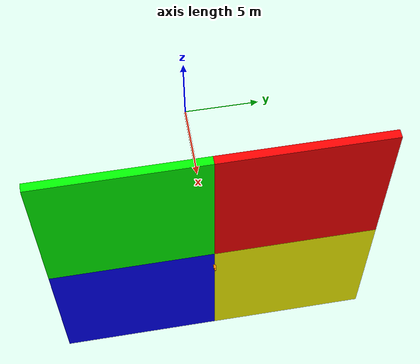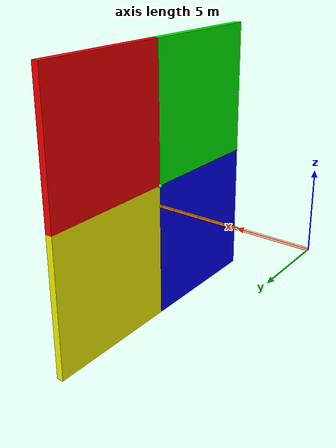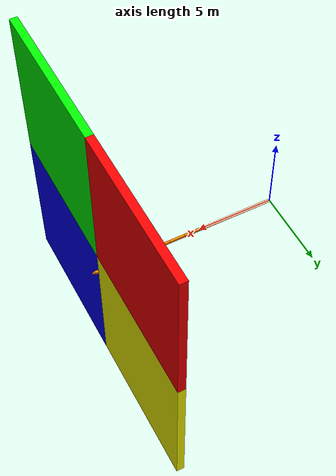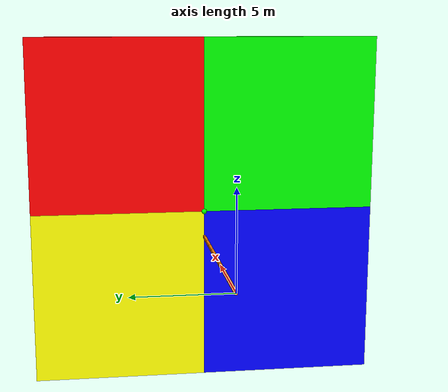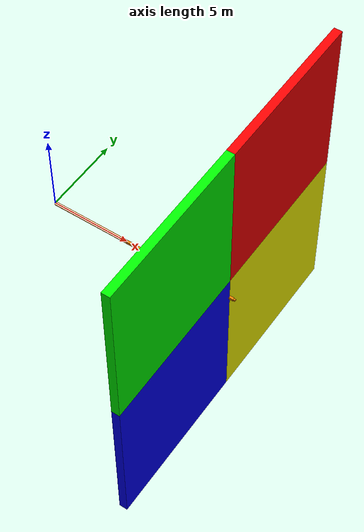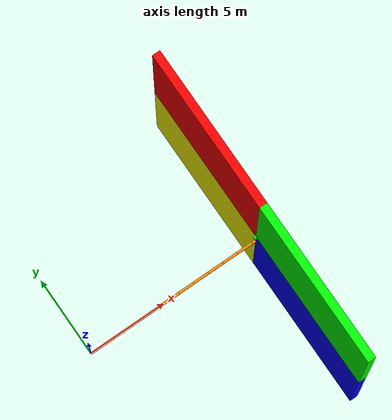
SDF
<?xml version="1.0"?>
<sdf version='1.6'>
  <world name='10DOFSensorPlacementEnvironment'>
    <light name='sun' type='directional'>
      <cast_shadows>1</cast_shadows>
      <pose frame=''>0 0 10 0 -0 0</pose>
      <diffuse>0.8 0.8 0.8 1</diffuse>
      <specular>0.2 0.2 0.2 1</specular>
      <attenuation>
        <range>1000</range>
        <constant>0.9</constant>
        <linear>0.01</linear>
        <quadratic>0.001</quadratic>
      </attenuation>
      <direction>-0.5 0.1 -0.9</direction>
    </light>
    <gravity>0 0 -9.8</gravity>
    <magnetic_field>6e-06 2.3e-05 -4.2e-05</magnetic_field>
    <atmosphere type='adiabatic'/>
    <physics name='default_physics' default='0' type='ode'>
      <max_step_size>0.001</max_step_size>
      <real_time_factor>1</real_time_factor>
      <real_time_update_rate>1000</real_time_update_rate>
    </physics>
    <scene>
      <ambient>0.4 0.4 0.4 1</ambient>
      <background>0.7 0.7 0.7 1</background>
      <shadows>1</shadows>
    </scene>
    <wind/>
    <spherical_coordinates>
      <surface_model>EARTH_WGS84</surface_model>
      <latitude_deg>0</latitude_deg>
      <longitude_deg>0</longitude_deg>
      <elevation>0</elevation>
      <heading_deg>0</heading_deg>
    </spherical_coordinates>

    <model name='GoalArea'>
      <pose frame=''>11.225 0 1.5 0 -0 0</pose>
      <link name='GoalAreaLink'>
        <inertial>
          <mass>1</mass>
          <inertia>
            <ixx>0.166667</ixx>
            <ixy>0</ixy>
            <ixz>0</ixz>
            <iyy>0.166667</iyy>
            <iyz>0</iyz>
            <izz>0.166667</izz>
          </inertia>
          <pose frame=''>0 0 0 0 -0 0</pose>
        </inertial>
        <visual name='visual'>
          <geometry>
            <sphere>
              <radius>0.15</radius>
            </sphere>
          </geometry>
          <material>
            <script>
              <name>Gazebo/Grey</name>
              <uri>file://media/materials/scripts/gazebo.material</uri>
            </script>
            <ambient>0 1 0 1</ambient>
          </material>
        </visual>
        <self_collide>0</self_collide>
        <enable_wind>0</enable_wind>
        <kinematic>0</kinematic>
      </link>
    </model>

    <model name="Wall0">
      <pose frame=''>11.5 0 1.0 0 0 0</pose>
      <link name="link">
        <pose frame=''>0 0 0 0 -0 0</pose>
        <collision name="collision">
          <pose frame=''>0 0 0 0 -0 0</pose>
          <geometry>
            <box>
              <size>0.5 10 10</size>
            </box>
          </geometry>
        </collision>
      </link>
    </model>

    <model name="Wall1">
      <pose frame=''>11.5 5 6.5 0 0 0</pose>
      <link name="link">
        <pose frame=''>0 0 0 0 -0 0</pose>
        <visual name="visual">
          <pose frame=''>0 0 0 0 -0 0</pose>
          <geometry>
            <box>
              <size>0.5 10 10</size>
            </box>
          </geometry>
          <material>
            <script>
              <name>Gazebo/Grey</name>
              <uri>file://media/materials/scripts/gazebo.material</uri>
            </script>
            <ambient>1 0 0 1</ambient>
          </material>
        </visual>
      </link>
    </model>

    <model name="Wall2">
      <pose frame=''>11.5 -5 6.5 0 0 0</pose>
      <link name="link">
        <pose frame=''>0 0 0 0 -0 0</pose>
        <visual name="visual">
          <pose frame=''>0 0 0 0 -0 0</pose>
          <geometry>
            <box>
              <size>0.5 10 10</size>
            </box>
          </geometry>
          <material>
            <script>
              <name>Gazebo/Grey</name>
              <uri>file://media/materials/scripts/gazebo.material</uri>
            </script>
            <ambient>0 1 0 1</ambient>
          </material>
        </visual>
      </link>
    </model>

    <model name="Wall3">
      <pose frame=''>11.5 -5 -3.5 0 0 0</pose>
      <link name="link">
        <pose frame=''>0 0 0 0 -0 0</pose>
        <visual name="visual">
          <pose frame=''>0 0 0 0 -0 0</pose>
          <geometry>
            <box>
              <size>0.5 10 10</size>
            </box>
          </geometry>
          <material>
            <script>
              <name>Gazebo/Grey</name>
              <uri>file://media/materials/scripts/gazebo.material</uri>
            </script>
            <ambient>0 0 1 1</ambient>
          </material>
        </visual>
      </link>
    </model>

    <model name="Wall4">
      <pose frame=''>11.5 5 -3.5 0 0 0</pose>
      <link name="link">
        <pose frame=''>0 0 0 0 -0 0</pose>
        <visual name="visual">
          <pose frame=''>0 0 0 0 -0 0</pose>
          <geometry>
            <box>
              <size>0.5 10 10</size>
            </box>
          </geometry>
          <material>
            <script>
              <name>Gazebo/Grey</name>
              <uri>file://media/materials/scripts/gazebo.material</uri>
            </script>
            <ambient>1 1 0 1</ambient>
          </material>
        </visual>
      </link>
    </model>

    <include>
        <uri>model://12DOFManipulator</uri>
        <pose>0.0 0.0 0.0 0 0 0</pose>
    </include>

    <gui fullscreen='0'>
      <camera name='user_camera'>
        <pose frame=''>-1.47298 -0.355116 9.73836 -0 1.2618 -0.035805</pose>
        <view_controller>orbit</view_controller>
        <projection_type>perspective</projection_type>
      </camera>
    </gui>
  </world>
</sdf>

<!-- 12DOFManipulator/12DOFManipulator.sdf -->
<sdf version='1.6'>
  <model name='12DOFManipulator'>
    <link name="link1">
      <pose frame=''>0 0 0 0 0 0</pose>
      <inertial>
        <pose frame='link1'>0.5 0 0 0 0 0</pose>
        <mass>1.0</mass>
        <inertia>
          <ixx>0.005</ixx>
          <ixy>0.</ixy>
          <ixz>0.0</ixz>
          <iyy>0.006</iyy>
          <izz>0.003</izz>
        </inertia>
      </inertial>
      <visual name='visual'>
        <pose frame=''>0.5 0 0 0 0 0</pose>
        <geometry>
          <box>
            <size>1 0.15 0.15</size>
          </box>
        </geometry>
        <material>
          <ambient>1.0 0.5019607843137254902 0 1.0</ambient>
        </material>
      </visual>
      <self_collide>0</self_collide>
    </link>

    <link name="link2">
      <pose frame=''>1 0 0 0 0 0</pose>
      <inertial>
        <pose frame='link2'>0.5 0 0 0 0 0</pose>
        <mass>1.0</mass>
        <inertia>
          <ixx>0.005</ixx>
          <ixy>0.</ixy>
          <ixz>0.0</ixz>
          <iyy>0.006</iyy>
          <izz>0.003</izz>
        </inertia>
      </inertial>
      <visual name='visual'>
        <pose frame=''>0.5 0 0 0 0 0</pose>
        <geometry>
          <box>
            <size>1 0.15 0.15</size>
          </box>
        </geometry>
        <material>
          <ambient>1.0 0.5019607843137254902 0 1.0</ambient>
        </material>
      </visual>
      <self_collide>0</self_collide>
    </link>

    <link name="link3">
      <pose frame=''>2 0 0 0 0 0</pose>
      <inertial>
        <pose frame='link3'>0.5 0 0 0 0 0</pose>
        <mass>1.0</mass>
        <inertia>
          <ixx>0.005</ixx>
          <ixy>0.</ixy>
          <ixz>0.0</ixz>
          <iyy>0.006</iyy>
          <izz>0.003</izz>
        </inertia>
      </inertial>
      <visual name='visual'>
        <pose frame=''>0.5 0 0 0 0 0</pose>
        <geometry>
          <box>
            <size>1 0.15 0.15</size>
          </box>
        </geometry>
        <material>
          <ambient>1.0 0.5019607843137254902 0 1.0</ambient>
        </material>
      </visual>
      <self_collide>0</self_collide>
    </link>

    <link name="link4">
      <pose frame=''>3 0 0 0 0 0</pose>
      <inertial>
        <pose frame='link4'>0.5 0 0 0 0 0</pose>
        <mass>1.0</mass>
        <inertia>
          <ixx>0.005</ixx>
          <ixy>0.</ixy>
          <ixz>0.0</ixz>
          <iyy>0.006</iyy>
          <izz>0.003</izz>
        </inertia>
      </inertial>
      <visual name='visual'>
        <pose frame=''>0.5 0 0 0 0 0</pose>
        <geometry>
          <box>
            <size>1 0.15 0.15</size>
          </box>
        </geometry>
        <material>
          <ambient>1.0 0.5019607843137254902 0 1.0</ambient>
        </material>
      </visual>
      <self_collide>0</self_collide>
    </link>

    <link name="link5">
      <pose frame=''>4 0 0 0 0 0</pose>
      <inertial>
        <pose frame='link5'>0.5 0 0 0 0 0</pose>
        <mass>1.0</mass>
        <inertia>
          <ixx>0.005</ixx>
          <ixy>0.</ixy>
          <ixz>0.0</ixz>
          <iyy>0.006</iyy>
          <izz>0.003</izz>
        </inertia>
      </inertial>
      <collision name='collision'>
        <pose frame=''>0.5 0 0 0 0 0</pose>
        <geometry>
          <box>
            <size>1 0.15 0.15</size>
          </box>
        </geometry>
      </collision>
      <visual name='visual'>
        <pose frame=''>0.5 0 0 0 0 0</pose>
        <geometry>
          <box>
            <size>1 0.15 0.15</size>
          </box>
        </geometry>
        <material>
          <ambient>1.0 0.5019607843137254902 0 1.0</ambient>
        </material>
      </visual>
      <self_collide>0</self_collide>
    </link>

    <link name="link6">
      <pose frame=''>5 0 0 0 0 0</pose>
      <inertial>
        <pose frame='link6'>0.5 0 0 0 0 0</pose>
        <mass>1.0</mass>
        <inertia>
          <ixx>0.005</ixx>
          <ixy>0.</ixy>
          <ixz>0.0</ixz>
          <iyy>0.006</iyy>
          <izz>0.003</izz>
        </inertia>
      </inertial>
      <collision name='collision'>
        <pose frame=''>0.5 0 0 0 0 0</pose>
        <geometry>
          <box>
            <size>1 0.15 0.15</size>
          </box>
        </geometry>
      </collision>
      <visual name='visual'>
        <pose frame=''>0.5 0 0 0 0 0</pose>
        <geometry>
          <box>
            <size>1 0.15 0.15</size>
          </box>
        </geometry>
        <material>
          <ambient>1.0 0.5019607843137254902 0 1.0</ambient>
        </material>
      </visual>
      <self_collide>0</self_collide>
    </link>

    <link name="link7">
      <pose frame=''>6 0 0 0 0 0</pose>
      <inertial>
        <pose frame='link7'>0.5 0 0 0 0 0</pose>
        <mass>1.0</mass>
        <inertia>
          <ixx>0.005</ixx>
          <ixy>0.</ixy>
          <ixz>0.0</ixz>
          <iyy>0.006</iyy>
          <izz>0.003</izz>
        </inertia>
      </inertial>
      <collision name='collision'>
        <pose frame=''>0.5 0 0 0 0 0</pose>
        <geometry>
          <box>
            <size>1 0.15 0.15</size>
          </box>
        </geometry>
      </collision>
      <visual name='visual'>
        <pose frame=''>0.5 0 0 0 0 0</pose>
        <geometry>
          <box>
            <size>1 0.15 0.15</size>
          </box>
        </geometry>
        <material>
          <ambient>1.0 0.5019607843137254902 0 1.0</ambient>
        </material>
      </visual>
      <self_collide>0</self_collide>
    </link>

    <link name="link8">
      <pose frame=''>7 0 0 0 0 0</pose>
      <inertial>
        <pose frame='link8'>0.5 0 0 0 0 0</pose>
        <mass>1.0</mass>
        <inertia>
          <ixx>0.005</ixx>
          <ixy>0.</ixy>
          <ixz>0.0</ixz>
          <iyy>0.006</iyy>
          <izz>0.003</izz>
        </inertia>
      </inertial>
      <collision name='collision'>
        <pose frame=''>0.5 0 0 0 0 0</pose>
        <geometry>
          <box>
            <size>1 0.15 0.15</size>
          </box>
        </geometry>
      </collision>
      <visual name='visual'>
        <pose frame=''>0.5 0 0 0 0 0</pose>
        <geometry>
          <box>
            <size>1 0.15 0.15</size>
          </box>
        </geometry>
        <material>
          <ambient>1.0 0.5019607843137254902 0 1.0</ambient>
        </material>
      </visual>
      <self_collide>0</self_collide>
    </link>

    <link name="link9">
      <pose frame=''>8 0 0 0 0 0</pose>
      <inertial>
        <pose frame='link9'>0.5 0 0 0 0 0</pose>
        <mass>1.0</mass>
        <inertia>
          <ixx>0.005</ixx>
          <ixy>0.</ixy>
          <ixz>0.0</ixz>
          <iyy>0.006</iyy>
          <izz>0.003</izz>
        </inertia>
      </inertial>
      <collision name='collision'>
        <pose frame=''>0.5 0 0 0 0 0</pose>
        <geometry>
          <box>
            <size>1 0.15 0.15</size>
          </box>
        </geometry>
      </collision>
      <visual name='visual'>
        <pose frame=''>0.5 0 0 0 0 0</pose>
        <geometry>
          <box>
            <size>1 0.15 0.15</size>
          </box>
        </geometry>
        <material>
          <ambient>1.0 0.5019607843137254902 0 1.0</ambient>
        </material>
      </visual>
      <self_collide>0</self_collide>
    </link>

    <link name="link10">
      <pose frame=''>9 0 0 0 0 0</pose>
      <inertial>
        <pose frame='link10'>0.5 0 0 0 0 0</pose>
        <mass>1.0</mass>
        <inertia>
          <ixx>0.005</ixx>
          <ixy>0.</ixy>
          <ixz>0.0</ixz>
          <iyy>0.006</iyy>
          <izz>0.003</izz>
        </inertia>
      </inertial>
      <collision name='collision'>
        <pose frame=''>0.5 0 0 0 0 0</pose>
        <geometry>
          <box>
            <size>1 0.15 0.15</size>
          </box>
        </geometry>
      </collision>
      <visual name='visual'>
        <pose frame=''>0.5 0 0 0 0 0</pose>
        <geometry>
          <box>
            <size>1 0.15 0.15</size>
          </box>
        </geometry>
        <material>
          <ambient>1.0 0.5019607843137254902 0 1.0</ambient>
        </material>
      </visual>
      <self_collide>0</self_collide>
    </link>

    <link name="link11">
      <pose frame=''>10 0 0 0 0 0</pose>
      <inertial>
        <pose frame='link11'>0.5 0 0 0 0 0</pose>
        <mass>1.0</mass>
        <inertia>
          <ixx>0.005</ixx>
          <ixy>0.</ixy>
          <ixz>0.0</ixz>
          <iyy>0.006</iyy>
          <izz>0.003</izz>
        </inertia>
      </inertial>
      <collision name='collision'>
        <pose frame=''>0.5 0 0 0 0 0</pose>
        <geometry>
          <box>
            <size>1 0.15 0.15</size>
          </box>
        </geometry>
      </collision>
      <visual name='visual'>
        <pose frame=''>0.5 0 0 0 0 0</pose>
        <geometry>
          <box>
            <size>1 0.15 0.15</size>
          </box>
        </geometry>
        <material>
          <ambient>1.0 0.5019607843137254902 0 1.0</ambient>
        </material>
      </visual>
      <self_collide>0</self_collide>
    </link>

     <link name="link12">
      <pose frame=''>11 0 0 0 0 0</pose>
      <inertial>
        <pose frame='link12'>0.5 0 0 0 0 0</pose>
        <mass>1.0</mass>
        <inertia>
          <ixx>0.005</ixx>
          <ixy>0.</ixy>
          <ixz>0.0</ixz>
          <iyy>0.006</iyy>
          <izz>0.003</izz>
        </inertia>
      </inertial>
      <collision name='collision'>
        <pose frame=''>0.5 0 0 0 0 0</pose>
        <geometry>
          <box>
            <size>1 0.15 0.15</size>
          </box>
        </geometry>
      </collision>
      <visual name='visual'>
        <pose frame=''>0.5 0 0 0 0 0</pose>
        <geometry>
          <box>
            <size>1 0.15 0.15</size>
          </box>
        </geometry>
        <material>
          <ambient>1.0 0.5019607843137254902 0 1.0</ambient>
        </material>
      </visual>
      <self_collide>0</self_collide>
    </link>

    <link name="endEffector">
      <pose frame=''>12.0625 0 0 0 0 0</pose>
      <inertial>
        <pose frame='endEffector'>0 0 0 0 0 0</pose>
        <mass>1.0</mass>
        <inertia>
          <ixx>0.005</ixx>
          <ixy>0.</ixy>
          <ixz>0.0</ixz>
          <iyy>0.006</iyy>
          <izz>0.003</izz>
        </inertia>
      </inertial>
      <collision name='endEffector_collision'>
        <pose frame=''>0 0 0 0 0 0</pose>
        <geometry>
          <box>
            <size>0.125 0.1 0.1</size>
          </box>
        </geometry>
      </collision>
      <visual name='endEffector_visual'>
        <pose frame=''>0 0 0 0 0 0</pose>
        <geometry>
          <box>
            <size>0.125 0.1 0.1</size>
          </box>
        </geometry>
        <material>
          <ambient>1.0 0.5019607843137254902 0 1.0</ambient>
        </material>
      </visual>
      <self_collide>0</self_collide>
    </link>

    <joint name="joint1" type="revolute">
      <parent>world</parent>
      <child>link1</child>
      <axis>
        <xyz>0 0 1</xyz>
        <limit>
          <lower>-1000</lower>
          <upper>1000</upper>
          <velocity>6</velocity>
          <effort>50</effort>
        </limit>
        <dynamics>
          <damping>1.0</damping>
          <friction>0.2</friction>
        </dynamics>
        <use_parent_model_frame>1</use_parent_model_frame>
      </axis>
      <physics>
        <ode>
          <implicit_spring_damper>1</implicit_spring_damper>
          <bounce>0</bounce>
          <limit>
            <erp>0.9</erp>
            <cfm>0</cfm>
          </limit>
        </ode>
      </physics>
    </joint>

    <joint name="joint2" type="revolute">
      <parent>link1</parent>
      <child>link2</child>
      <axis>
        <xyz>0 1 0</xyz>
        <limit>
          <lower>-1000</lower>
          <upper>1000</upper>
          <velocity>2</velocity>
          <effort>30</effort>
        </limit>
        <dynamics>
          <damping>1.0</damping>
          <friction>0.2</friction>
        </dynamics>
        <use_parent_model_frame>1</use_parent_model_frame>
      </axis>
      <physics>
        <ode>
          <implicit_spring_damper>1</implicit_spring_damper>
          <bounce>0</bounce>
          <limit>
            <erp>0.9</erp>
            <cfm>0</cfm>
          </limit>
        </ode>
      </physics>
    </joint>

    <joint name="joint3" type="revolute">
      <parent>link2</parent>
      <child>link3</child>
      <axis>
        <xyz>0 1 0</xyz>
        <limit>
          <lower>-1000</lower>
          <upper>1000</upper>
          <velocity>2</velocity>
          <effort>40</effort>
        </limit>
        <dynamics>
          <damping>1.0</damping>
          <friction>0.2</friction>
        </dynamics>
        <use_parent_model_frame>1</use_parent_model_frame>
      </axis>
      <physics>
        <ode>
          <implicit_spring_damper>1</implicit_spring_damper>
          <bounce>0</bounce>
          <limit>
            <erp>0.9</erp>
            <cfm>0</cfm>
          </limit>
        </ode>
      </physics>
    </joint>

    <joint name="joint4" type="revolute">
      <parent>link3</parent>
      <child>link4</child>
      <axis>
        <xyz>0 0 1</xyz>
        <limit>
          <lower>-1000</lower>
          <upper>1000</upper>
          <velocity>2</velocity>
          <effort>5</effort>
        </limit>
        <dynamics>
          <damping>1.0</damping>
          <friction>0.2</friction>
        </dynamics>
        <use_parent_model_frame>1</use_parent_model_frame>
      </axis>
      <physics>
        <ode>
          <implicit_spring_damper>1</implicit_spring_damper>
          <bounce>0</bounce>
          <limit>
            <erp>0.9</erp>
            <cfm>0</cfm>
          </limit>
        </ode>
      </physics>
    </joint>

    <joint name="joint5" type="revolute">
      <parent>link4</parent>
      <child>link5</child>
      <axis>
        <xyz>0 0 1</xyz>
        <limit>
          <lower>-1000</lower>
          <upper>1000</upper>
          <velocity>2</velocity>
          <effort>5</effort>
        </limit>
        <dynamics>
          <damping>1.0</damping>
          <friction>0.2</friction>
        </dynamics>
        <use_parent_model_frame>1</use_parent_model_frame>
      </axis>
      <physics>
        <ode>
          <implicit_spring_damper>1</implicit_spring_damper>
          <bounce>0</bounce>
          <limit>
            <erp>0.9</erp>
            <cfm>0</cfm>
          </limit>
        </ode>
      </physics>
    </joint>

    <joint name="joint6" type="revolute">
      <parent>link5</parent>
      <child>link6</child>
      <axis>
        <xyz>0 1 0</xyz>
        <limit>
          <lower>-1000</lower>
          <upper>1000</upper>
          <velocity>2</velocity>
          <effort>5</effort>
        </limit>
        <dynamics>
          <damping>1.0</damping>
          <friction>0.2</friction>
        </dynamics>
        <use_parent_model_frame>1</use_parent_model_frame>
      </axis>
      <physics>
        <ode>
          <implicit_spring_damper>1</implicit_spring_damper>
          <bounce>0</bounce>
          <limit>
            <erp>0.9</erp>
            <cfm>0</cfm>
          </limit>
        </ode>
      </physics>
    </joint>

    <joint name="joint7" type="revolute">
      <parent>link6</parent>
      <child>link7</child>
      <axis>
        <xyz>0 0 1</xyz>
        <limit>
          <lower>-1000</lower>
          <upper>1000</upper>
          <velocity>2</velocity>
          <effort>5</effort>
        </limit>
        <dynamics>
          <damping>1.0</damping>
          <friction>0.2</friction>
        </dynamics>
        <use_parent_model_frame>1</use_parent_model_frame>
      </axis>
      <physics>
        <ode>
          <implicit_spring_damper>1</implicit_spring_damper>
          <bounce>0</bounce>
          <limit>
            <erp>0.9</erp>
            <cfm>0</cfm>
          </limit>
        </ode>
      </physics>
    </joint>

    <joint name="joint8" type="revolute">
      <parent>link7</parent>
      <child>link8</child>
      <axis>
        <xyz>0 0 1</xyz>
        <limit>
          <lower>-1000</lower>
          <upper>1000</upper>
          <velocity>2</velocity>
          <effort>5</effort>
        </limit>
        <dynamics>
          <damping>1.0</damping>
          <friction>0.2</friction>
        </dynamics>
        <use_parent_model_frame>1</use_parent_model_frame>
      </axis>
      <physics>
        <ode>
          <implicit_spring_damper>1</implicit_spring_damper>
          <bounce>0</bounce>
          <limit>
            <erp>0.9</erp>
            <cfm>0</cfm>
          </limit>
        </ode>
      </physics>
    </joint>

    <joint name="joint9" type="revolute">
      <parent>link8</parent>
      <child>link9</child>
      <axis>
        <xyz>0 0 1</xyz>
        <limit>
          <lower>-1000</lower>
          <upper>1000</upper>
          <velocity>2</velocity>
          <effort>5</effort>
        </limit>
        <dynamics>
          <damping>1.0</damping>
          <friction>0.2</friction>
        </dynamics>
        <use_parent_model_frame>1</use_parent_model_frame>
      </axis>
      <physics>
        <ode>
          <implicit_spring_damper>1</implicit_spring_damper>
          <bounce>0</bounce>
          <limit>
            <erp>0.9</erp>
            <cfm>0</cfm>
          </limit>
        </ode>
      </physics>
    </joint>

    <joint name="joint10" type="revolute">
      <parent>link9</parent>
      <child>link10</child>
      <axis>
        <xyz>0 0 1</xyz>
        <limit>
          <lower>-1000</lower>
          <upper>1000</upper>
          <velocity>2</velocity>
          <effort>5</effort>
        </limit>
        <dynamics>
          <damping>1.0</damping>
          <friction>0.2</friction>
        </dynamics>
        <use_parent_model_frame>1</use_parent_model_frame>
      </axis>
      <physics>
        <ode>
          <implicit_spring_damper>1</implicit_spring_damper>
          <bounce>0</bounce>
          <limit>
            <erp>0.9</erp>
            <cfm>0</cfm>
          </limit>
        </ode>
      </physics>
    </joint>

    <joint name="joint11" type="revolute">
      <parent>link10</parent>
      <child>link11</child>
      <axis>
        <xyz>0 0 1</xyz>
        <limit>
          <lower>-1000</lower>
          <upper>1000</upper>
          <velocity>2</velocity>
          <effort>5</effort>
        </limit>
        <dynamics>
          <damping>1.0</damping>
          <friction>0.2</friction>
        </dynamics>
        <use_parent_model_frame>1</use_parent_model_frame>
      </axis>
      <physics>
        <ode>
          <implicit_spring_damper>1</implicit_spring_damper>
          <bounce>0</bounce>
          <limit>
            <erp>0.9</erp>
            <cfm>0</cfm>
          </limit>
        </ode>
      </physics>
    </joint>

    <joint name="joint12" type="revolute">
      <parent>link11</parent>
      <child>link12</child>
      <axis>
        <xyz>0 0 1</xyz>
        <limit>
          <lower>-1000</lower>
          <upper>1000</upper>
          <velocity>2</velocity>
          <effort>5</effort>
        </limit>
        <dynamics>
          <damping>1.0</damping>
          <friction>0.2</friction>
        </dynamics>
        <use_parent_model_frame>1</use_parent_model_frame>
      </axis>
      <physics>
        <ode>
          <implicit_spring_damper>1</implicit_spring_damper>
          <bounce>0</bounce>
          <limit>
            <erp>0.9</erp>
            <cfm>0</cfm>
          </limit>
        </ode>
      </physics>
    </joint>

    <joint name="joint13" type="fixed">
      <parent>link12</parent>
      <child>endEffector</child>
    </joint>
  </model>

</sdf>
